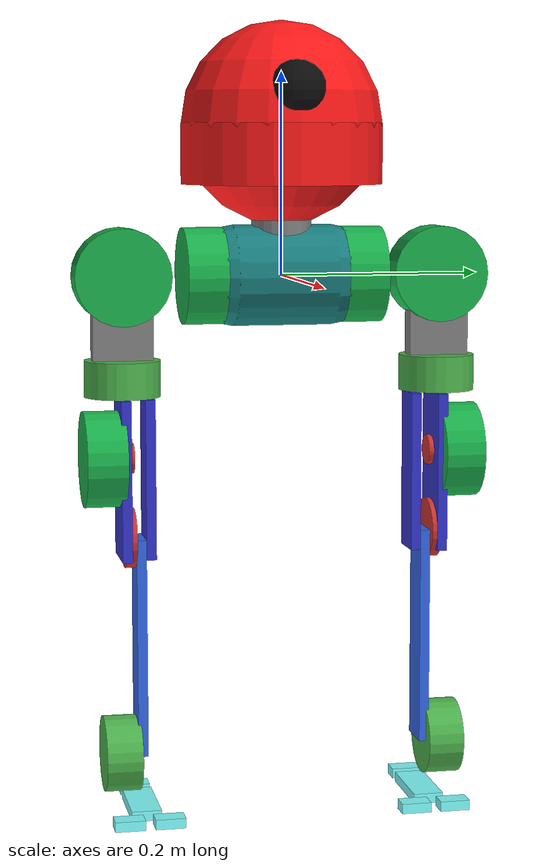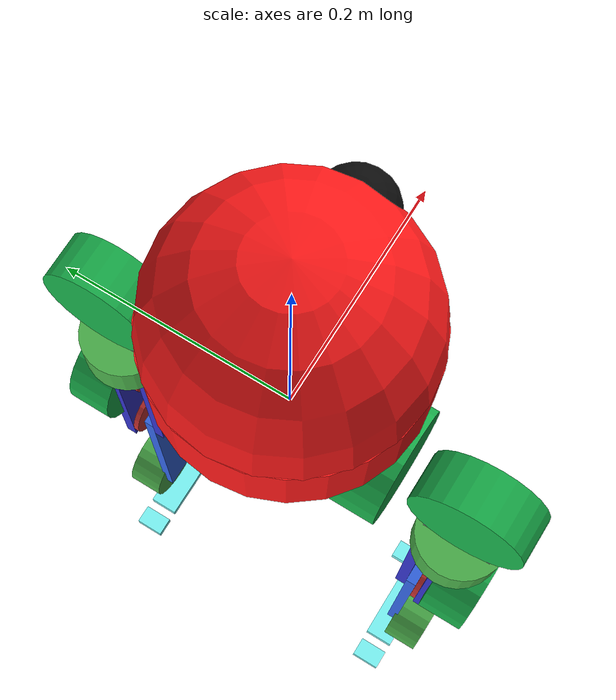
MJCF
<mujoco model="BD-prev-gear">
    <compiler angle="radian" meshdir="meshes" autolimits="true"/>
    <option timestep="0.005" solver="Newton" integrator="RK4"/>

    <default>
        <default class="BD-prims">
            <site group="5" rgba="1 0 0 1"/>

            <default class="visual">
                <geom group="2" type="capsule" size="0.02 0.05" density="0" contype="0" conaffinity="0"/>
            </default>
            <default class="collision">
                <geom group="3" rgba=".2 .6 .2 .3" type="capsule" contype="1" conaffinity="1"/>
            </default>

            <default class="foot_properties">
                <geom contype="1" conaffinity="1" friction="1.0 0.005 0.0001" condim="4" rgba="0.5 1 1 1"/>
            </default>

            <default class="motor_J8006_visual">
                <geom group="2" type="cylinder" size="0.048 0.02" density="0" contype="0" conaffinity="0" rgba="0.1 0.7 0.3 1"/>
            </default>
            <default class="motor_J8006_collision">
                <geom group="3"  type="cylinder" size="0.048 0.02" contype="1" conaffinity="1" rgba=".2 .6 .2 .3"/>
            </default>

            <default class="motor_J6006_visual">
                <geom group="2" type="cylinder" size="0.038 0.018" density="0" contype="0" conaffinity="0" rgba="0.3 0.7 0.3 1"/>
            </default>
            <default class="motor_J6006_collision">
                <geom group="3" type="cylinder" size="0.038 0.018" contype="1" conaffinity="1" rgba=".2 .6 .2 .3"/>
            </default>

            <default class="motor_J">
                <general gaintype="fixed" gainprm="1" biastype="affine" biasprm="0 0 0" />
            </default>
        </default>
    </default>

    <asset>
        <texture type="2d" name="grid_tex" builtin="checker" mark="edge" rgb1="0.2 0.3 0.4" rgb2="0.1 0.2 0.3" width="100" height="100"/>
        <material name="grid" texture="grid_tex" texrepeat="1 1" texuniform="true"/>
    </asset>

    <worldbody>

        <body name="pelvis" pos="0 0 0" childclass="BD-prims">
            <light pos="0 0 2" mode="trackcom" castshadow="false"/>
            <inertial pos="0 0 0" quat="1 0 0 0" mass="2.0" diaginertia="0.01 0.01 0.01"/>
            <freejoint name="floating_base"/>
            <geom class="visual" type="capsule" size="0.05 0.05" euler="1.57 0 0" rgba="0.1 0.5 0.5 1"/>
            <geom class="collision" type="capsule" size="0.05 0.05" euler="1.57 0 0"/>

            <body name="waist" pos="0 0 0.05">
                <geom class="visual" type="cylinder" size="0.03 0.05"/>
                <body name="head" pos="0 0 0.1">
                    <geom class="visual" type="sphere" size="0.1" rgba="1 0.1 0.1 1"/>
                    <geom class="collision" type="sphere" size="0.1"/>
                    <inertial pos="0 0 0" mass="1.5" diaginertia="0.001 0.001 0.001"/>
                    <geom class="visual" type="cylinder" pos="0 0 -0.03" size="0.1 0.03" rgba="1 0.1 0.1 1"/>
                    <geom class="visual" type="sphere" pos="0.075 0 0.03" size="0.03" rgba="0.05 0.05 0.05 1"/>
                </body>
            </body>

            <body name="left_hip_pitch_motor" pos="0 0.08 0">
                <geom class="motor_J8006_visual"  euler="-1.57 0 0"/>
                <geom class="motor_J8006_collision"  euler="-1.57 0 0"/>
                <inertial pos="0 0 0" mass="0.55" diaginertia="0.001 0.0007 0.001"/>
            </body>
            <body name="left_hip_pitch_link" pos="0 0.08 0">
                <joint name="JL0_hip_pitch" axis="0 1 0" range="-1.57 1.57" armature="0.0020465" damping="0.2"/>
                <geom class="motor_J8006_visual" pos="0 0.08 0" euler="0 1.57 0"/>
                <geom class="motor_J8006_collision" pos="0 0.08 0" euler="0 1.57 0"/>
                <inertial pos="0 0.08 0" mass="0.55" diaginertia="0.0007 0.001 0.001"/>

                <body name="left_hip_roll_link" pos="0 0.08 0">
                    <joint name="JL1_hip_roll" axis="1 0 0" range="-0.785 1.57" armature="0.0020465" damping="0.2"/>
                    <geom class="visual" type="box" pos="0 0 -0.05" size="0.01 0.03 0.05"/>
                    <geom class="motor_J6006_visual" pos="0 0 -0.1" euler="3.14 0 0"/>
                    <geom class="motor_J6006_collision" pos="0 0 -0.1" euler="3.14 0 0"/>
                    <inertial pos="0 0 -0.1" mass="0.55" diaginertia="0.001 0.001 0.0007"/>

                    <body name="left_thigh_yaw_link" pos="0 0 -0.1">
                        <joint name="JL2_thigh_yaw" axis="0 0 -1" range="-1.57 1.57" armature="0.0020465" damping="0.2"/>

                        <geom class="visual" type="cylinder" pos="0 -0.005 -0.08" size="0.015 0.005" euler="1.57 0 0" rgba="0.8 0.2 0.2 1"/>
                        <geom class="visual" type="cylinder" pos="0 -0.005 -0.16" size="0.03 0.005" euler="1.57 0 0" rgba="0.8 0.2 0.2 1"/>
                        <geom class="motor_J8006_visual" euler="-1.57 0 0" pos="0 0.02 -0.08"/>
                        <geom class="motor_J8006_collision" euler="-1.57 0 0" pos="0 0.02 -0.08"/>
                        <inertial pos="0 0.02 -0.08" mass="0.55" diaginertia="0.001 0.0007 0.001"/>
                        <body name="left_thigh_struc" pos="0 0 0">
                            <geom class="visual" type="box" pos="0 0 -0.1" size="0.03 0.005 0.08" mass="0.1" rgba="0.2 0.2 0.8 1"/>
                            <geom class="visual" type="box" pos="0 -0.025 -0.1" size="0.02 0.005 0.08" mass="0.1" rgba="0.2 0.2 0.8 1"/>
                        </body>

                        <body name="left_knee_pitch_link" pos="0 -0.015 -0.16">
                            <joint name="JL3_knee_pitch" axis="0 -1 0" range="-1.57 2.62" armature="0.0020465" damping="0.2"/>
                            <geom class="motor_J6006_visual" euler="1.57 0 0" pos="0 0.02 -0.22"/>
                            <geom class="motor_J6006_collision" euler="1.57 0 0" pos="0 0.02 -0.22"/>
                            <inertial pos="0 0.02 -0.22" mass="0.55" diaginertia="0.001 0.0007 0.001"/>
                            <body name="left_knee_struc" pos="0 0 0">
                                <geom class="visual" type="box" pos="0 0 -0.11" size="0.02 0.005 0.11" mass="0.1" rgba="0.2 0.4 0.9 1"/>
                            </body>

                            <body name="left_ankle_pitch_link" pos="0 0 -0.22">
                                <joint name="JL4_ankle_pitch" axis="0 -1 0" range="-1.57 0.785" armature="0.0020465" damping="0.2"/>
                                <body name="left_foot" pos="0 0 -0.055" childclass="foot_properties">
                                    <geom type="box" pos="0.06 0.02 0" size="0.01 0.015 0.005"/>
                                    <geom type="box" pos="0.06 -0.02 0" size="0.01 0.015 0.005"/>
                                    <geom type="box" pos="0 0 0" size="0.04 0.015 0.005"/>
                                    <geom type="box" pos="-0.06 0 0" size="0.01 0.015 0.005"/>
                                </body>
                                <inertial pos="0.015 0 -0.055" mass="0.2" diaginertia="0.0001 0.0005 0.0005"/>
                            </body>
                        </body>
                    </body>
                </body>
            </body>

            <body name="right_hip_pitch_motor" pos="0 -0.08 0">
                <geom class="motor_J8006_visual"  euler="-1.57 0 0"/>
                <geom class="motor_J8006_collision"  euler="-1.57 0 0"/>
                <inertial pos="0 0 0" mass="0.55" diaginertia="0.001 0.0007 0.001"/>
            </body>
            <body name="right_hip_pitch_link" pos="0 -0.08 0">
                <joint name="JR0_hip_pitch" axis="0 -1 0" range="-1.57 1.57" armature="0.0020465" damping="0.2"/>
                <geom class="motor_J8006_visual" euler="0 1.57 0" pos="0 -0.08 0"/>
                <geom class="motor_J8006_collision" euler="0 1.57 0" pos="0 -0.08 0"/>
                <inertial pos="0 -0.08 0" mass="0.55" diaginertia="0.0007 0.001 0.001"/>

                <body name="right_hip_roll_link" pos="0 -0.08 0">
                    <joint name="JR1_hip_roll" axis="1 0 0" range="-0.785 1.57" armature="0.0020465" damping="0.2"/>
                    <geom class="visual" type="box" pos="0 0 -0.05" size="0.01 0.03 0.05"/>
                    <geom class="motor_J6006_visual" pos="0 0 -0.1" euler="3.14 0 0"/>
                    <geom class="motor_J6006_collision" pos="0 0 -0.1" euler="3.14 0 0"/>
                    <inertial pos="0 0 -0.1" mass="0.55" diaginertia="0.001 0.001 0.0007"/>

                    <body name="right_thigh_yaw_link" pos="0 0 -0.1">
                        <joint name="JR2_thigh_yaw" axis="0 0 -1" range="-1.57 1.57" armature="0.0020465" damping="0.2"/>
                        <geom class="visual" type="cylinder" pos="0 0.005 -0.08" size="0.015 0.005" euler="1.57 0 0" rgba="0.8 0.2 0.2 1"/>
                        <geom class="visual" type="cylinder" pos="0 0.005 -0.16" size="0.03 0.005" euler="1.57 0 0" rgba="0.8 0.2 0.2 1"/>
                        <geom class="motor_J8006_visual" euler="-1.57 0 0" pos="0 -0.02 -0.08"/>
                        <geom class="motor_J8006_collision" euler="-1.57 0 0" pos="0 -0.02 -0.08"/>
                        <inertial pos="0 -0.02 -0.08" mass="0.55" diaginertia="0.001 0.0007 0.001"/>
                        <body name="right_thigh_struc" pos="0 0 0">
                            <geom class="visual" type="box" pos="0 0 -0.1" size="0.03 0.005 0.08" mass="0.1" rgba="0.2 0.2 0.8 1"/>
                            <geom class="visual" type="box" pos="0 0.025 -0.1" size="0.02 0.005 0.08" mass="0.1" rgba="0.2 0.2 0.8 1"/>
                        </body>

                        <body name="right_knee_pitch_link" pos="0 0.015 -0.16">
                            <joint name="JR3_knee_pitch" axis="0 1 0" range="-2.62 1.57" armature="0.0020465" damping="0.2"/>
                            <geom class="motor_J6006_visual" pos="0 -0.02 -0.22" euler="1.57 0 0"/>
                            <geom class="motor_J6006_collision" pos="0 -0.02 -0.22" euler="1.57 0 0"/>
                            <inertial pos="0 -0.02 -0.22" mass="0.55" diaginertia="0.001 0.0007 0.001"/>
                            <body name="right_knee_struc" pos="0 0 0">
                                <geom class="visual" type="box" pos="0 0 -0.11" size="0.02 0.005 0.11" mass="0.1" rgba="0.2 0.4 0.9 1"/>
                            </body>

                            <body name="right_ankle_pitch_link" pos="0 0 -0.22">
                                <joint name="JR4_ankle_pitch" axis="0 1 0" range="-0.785 1.31" armature="0.0020465" damping="0.2"/>
                                <body name="right_foot" pos="0 0 -0.055" childclass="foot_properties">
                                    <geom type="box" pos="0.06 0.02 0" size="0.01 0.015 0.005"/>
                                    <geom type="box" pos="0.06 -0.02 0" size="0.01 0.015 0.005"/>
                                    <geom type="box" pos="0 0 0" size="0.04 0.015 0.005"/>
                                    <geom type="box" pos="-0.06 0 0" size="0.01 0.015 0.005"/>
                                </body>
                                <inertial pos="0.015 0 -0.055" mass="0.2" diaginertia="0.0001 0.0005 0.0005"/>
                            </body>
                        </body>
                    </body>
                </body>
            </body>

        </body>
    </worldbody>

    <actuator>
        <motor name="ML0_hip_pitch"     class="motor_J"   joint="JL0_hip_pitch"   gear="1" forcerange="-20 20" ctrlrange="-20 20"/>
        <motor name="ML1_hip_roll"      class="motor_J"   joint="JL1_hip_roll"    gear="1" forcerange="-20 20" ctrlrange="-20 20"/>
        <motor name="ML2_thigh_yaw"     class="motor_J"   joint="JL2_thigh_yaw"   gear="1" forcerange="-12 12" ctrlrange="-12 12"/>
        <motor name="ML3_knee_pitch"    class="motor_J"   joint="JL3_knee_pitch"  gear="1" forcerange="-20 20" ctrlrange="-20 20"/>
        <motor name="ML4_ankle_pitch"   class="motor_J"   joint="JL4_ankle_pitch" gear="1" forcerange="-12 12" ctrlrange="-12 12"/>

        <motor name="MR0_hip_pitch"     class="motor_J"   joint="JR0_hip_pitch"   gear="1" forcerange="-20 20" ctrlrange="-20 20"/>
        <motor name="MR1_hip_roll"      class="motor_J"   joint="JR1_hip_roll"    gear="1" forcerange="-20 20" ctrlrange="-20 20"/>
        <motor name="MR2_thigh_yaw"     class="motor_J"   joint="JR2_thigh_yaw"   gear="1" forcerange="-12 12" ctrlrange="-12 12"/>
        <motor name="MR3_knee_pitch"    class="motor_J"   joint="JR3_knee_pitch"  gear="1" forcerange="-20 20" ctrlrange="-20 20"/>
        <motor name="MR4_ankle_pitch"   class="motor_J"   joint="JR4_ankle_pitch" gear="1" forcerange="-12 12" ctrlrange="-12 12"/>
    </actuator>
</mujoco>
